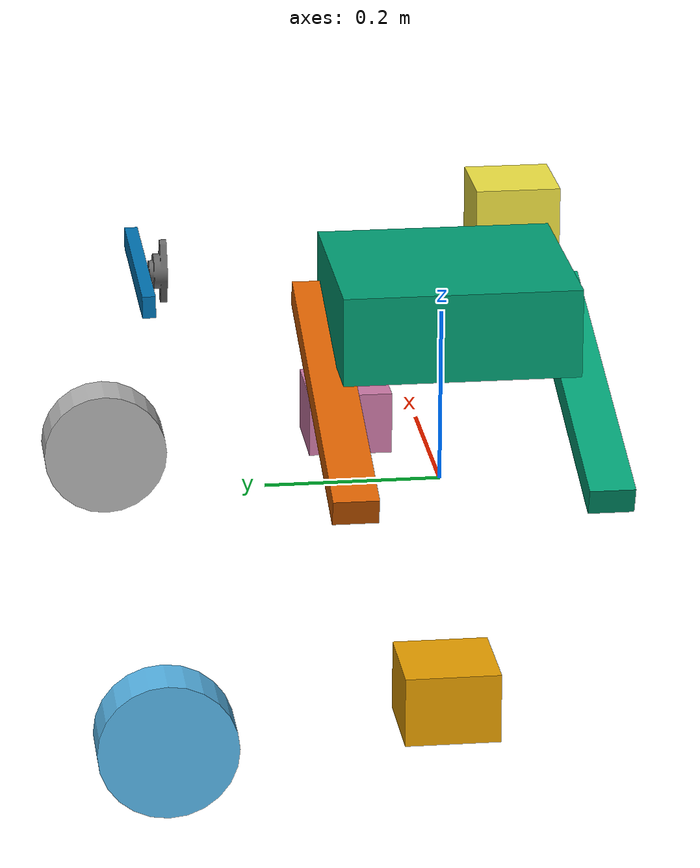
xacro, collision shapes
<?xml version="1.0"?>
<robot xmlns:xacro="http://www.ros.org/wiki/xacro" name="perseus_lite">
  <xacro:arg name="prefix" default="" />
  <xacro:arg name="use_mock_hardware" default="false" />
  <xacro:arg name="serial_port" default="/dev/ttyUSB0" />

  <xacro:property name="real_hardware_plugin"
  value="perseus_lite_hardware/ST3215SystemHardware" />
  <xacro:property name="use_mock_hardware" value="$(arg use_mock_hardware)" />
  <xacro:property name="hardware_plugin"
    value="${'mock_components/GenericSystem' if use_mock_hardware else real_hardware_plugin}" />

  <!-- Import URDF description -->
  <xacro:include filename="$(find perseus_lite_description)/urdf/perseus_lite.urdf.xacro" />
  <!-- Import colours for rviz -->
  <xacro:include filename="$(find perseus_lite_description)/urdf/perseus_lite.materials.xacro" />
  <!-- Import ros2_control description -->
  <xacro:include filename="$(find perseus_lite_description)/ros2_control/perseus_lite.ros2_control.xacro" />

  <!-- Instantiate the description and the ROS2 control information -->
  <xacro:perseus_lite prefix="$(arg prefix)" />
  <xacro:perseus_lite_ros2_control name="PerseusLite" prefix="$(arg prefix)" hardware_plugin="${hardware_plugin}" serial_port="$(arg serial_port)"/>
</robot>

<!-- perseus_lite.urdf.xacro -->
<robot xmlns:xacro="http://ros.org/wiki/xacro">
  <xacro:arg name="hardware_plugin" default="perseus_lite_hardware/ST3215SystemHardware"/>
  <xacro:arg name="hardware_type" default="st3215"/>
  <xacro:arg name="use_mock_hardware" default="false"/>
  <xacro:arg name="serial_port" default="/dev/ttyUSB0"/>

  <xacro:include filename="$(find perseus_lite_description)/ros2_control/perseus_lite.ros2_control.xacro" />

  <xacro:macro name="perseus_lite" params="prefix">
    <xacro:include filename="$(find perseus_lite_description)/urdf/chassis.urdf.xacro"/>
    <xacro:include filename="$(find perseus_lite_description)/urdf/rocker.urdf.xacro"/>

    <xacro:property name="scale" value="0.5"/>

    <link name="${prefix}base_link"/>

    <joint name="base_footprint_joint" type="fixed">
      <parent link="base_link"/>
      <child link="base_footprint"/>
      <origin xyz="0 0 0" rpy="0 0 0"/>
    </joint>

    <link name="base_footprint">
    </link>

    <xacro:chassis />
    <joint name="chassis_joint" type="fixed">
      <origin xyz="${0.21 * scale} 0.0 ${0.35 * scale}" rpy="0.0 0.0 -${pi/2}"/>
      <parent link="${prefix}base_link"/>
      <child link="${prefix}chassis"/>
    </joint>

    <xacro:rocker side="left">
      <origin xyz="${-0.275 * scale} ${-0.075 * scale} ${0.05 * scale}" rpy="0.0 0.0 ${-pi/2}"/>
    </xacro:rocker>
    <xacro:rocker side="right">
      <origin xyz="${0.275 * scale} ${-0.075 * scale} ${0.05 * scale}" rpy="0.0 0.0 ${-pi/2}"/>
    </xacro:rocker>

    <xacro:perseus_lite_ros2_control
      name="PerseusLite"
      prefix="${prefix}"
      hardware_plugin="$(arg hardware_plugin)"
      serial_port="$(arg serial_port)"/>
  </xacro:macro>
</robot>

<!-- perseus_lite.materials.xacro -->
<robot xmlns:xacro="http://www.ros.org/wiki/xacro">

  <material name="black">
    <color rgba="0.0 0.0 0.0 1.0"/>
  </material>

  <material name="dark">
    <color rgba="0.3 0.3 0.3 1.0"/>
  </material>

  <material name="light_black">
    <color rgba="0.4 0.4 0.4 1.0"/>
  </material>

  <material name="blue">
    <color rgba="0.0 0.0 0.8 1.0"/>
  </material>

  <material name="green">
    <color rgba="0.0 0.8 0.0 1.0"/>
  </material>

  <material name="grey">
    <color rgba="0.5 0.5 0.5 1.0"/>
  </material>

  <material name="orange">
    <color rgba="1.0 0.423529411765 0.0392156862745 1.0"/>
  </material>

  <material name="brown">
    <color rgba="0.870588235294 0.811764705882 0.764705882353 1.0"/>
  </material>

  <material name="red">
    <color rgba="0.8 0.0 0.0 1.0"/>
  </material>

  <material name="white">
    <color rgba="1.0 1.0 1.0 1.0"/>
  </material>

</robot>

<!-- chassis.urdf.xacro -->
<robot name="chassis" xmlns:xacro="http://ros.org/wiki/xacro">
  <!-- Contains base rover chassis and balance bar -->
  <xacro:macro name="chassis" params="prefix:=^">
    <!-- CHASSIS -->
    <link name="${prefix}chassis">
       <inertial>
        <!-- Scaled inertial properties for Perseus Lite -->
        <origin xyz="0.0 -0.08550236602 0.07366242988" rpy="0 0 0"/>
        <mass value="1.38449701513"/> <!-- Scaled by 0.5 -->
        <!-- Updated inertia values using square scaling factor (0.5^2 = 0.25) -->
        <inertia ixx="0.005327" iyy="0.002894" izz="0.007011"
                 ixy="0.0" iyz="0.000169" ixz="-0.0"/>
      </inertial>

      <visual>
        <origin xyz="0.0 0.0 0.0" rpy="0 0.0 ${-pi/2}"/>
        <geometry>
          <mesh scale="0.05 0.05 0.05" filename="file://$(find perseus_description)/meshes/chassis.dae"/>
        </geometry>
      </visual>

      <collision>
        <origin xyz="0.0 -0.15 0.05" rpy="0 0.0 ${-pi/2}"/>
        <geometry>
          <box size="0.2375 0.2625 0.1" />
        </geometry>
      </collision>
    </link>

    <!-- Flange Bearing -->
    <link name="${prefix}flange_bearing">
      <inertial>
        <origin xyz="0.0 0.0 0.0" rpy="0 0 0"/>
        <mass value="0.6637443674696325"/>
        <inertia ixx="0.000164" iyy="0.000212" izz="0.000081"
                 ixy="0.0" iyz="0.0" ixz="-0.0"/>
      </inertial>

      <visual>
        <origin xyz="0.0 0.0 0.0" rpy="0 0 0"/>
        <geometry>
          <mesh scale="0.05 0.05 0.05" filename="file://$(find perseus_description)/meshes/flange_bearing.dae"/>
        </geometry>
      </visual>

      <collision>
        <origin xyz="0.0 0.0 0.0" rpy="0 0 0"/>
        <geometry>
          <mesh scale="0.05 0.05 0.05" filename="file://$(find perseus_description)/meshes/flange_bearing.dae"/>
        </geometry>
      </collision>
    </link>

    <joint name="${prefix}flange_bearing_joint" type="fixed">
      <origin xyz="-0.3 -0.0 0.05" rpy="0 ${-pi/2} 0.0"/>
      <parent link="${prefix}chassis"/>
      <child link="${prefix}flange_bearing"/>
    </joint>

    <!-- Balance/differential bar -->
    <link name="${prefix}differential_bar">
      <inertial>
        <origin xyz="-0.0006050564992 -0.02287436340 0.0" rpy="0.0 0.0 0.0"/>
        <mass value="0.4586324759064"/>
        <inertia ixx="0.000045" iyy="0.002292" izz="0.002267"
                 ixy="0.0000004" iyz="-0.0" ixz="0.0"/>
      </inertial>

      <visual>
        <origin xyz="0.0 0.0 0.0" rpy="0.0 0.0 0.0"/>
        <geometry>
          <mesh scale="0.05 0.05 0.05" filename="file://$(find perseus_description)/meshes/differential_bar.dae"/>
        </geometry>
      </visual>

      <collision>
        <origin xyz="0.0 0.0 -0.005" rpy="0.0 0.0 0.0"/>
        <geometry>
          <box size="0.25 0.025 0.015" />
        </geometry>
      </collision>
    </link>

    <joint name="${prefix}differential_bar_joint" type="fixed">
      <origin xyz="0.0 0.0 0.025" rpy="${pi} 0.0 ${-pi/2}"/>
      <axis xyz="0.0 0.0 1.0"/>
      <parent link="${prefix}flange_bearing"/>
      <child link="${prefix}differential_bar"/>
    </joint>
  </xacro:macro>
</robot>

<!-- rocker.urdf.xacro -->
<robot name="rocker" xmlns:xacro="http://www.ros.org/wiki/xacro">

  <xacro:include filename="$(find perseus_lite_description)/urdf/motor_wheel.urdf.xacro"/>

  <xacro:macro name="rocker" params="prefix:=^ side *origin">
    <!-- ROCKER ARM -->
    <link name="${prefix}${side}_rocker">
      <inertial>
        <origin xyz="0.011819187400851083 -0.08337339654014758 -0.06739096070989994" rpy="0.0 0.0 0.0"/>
        <!-- RIGHT -->
        <xacro:if value="${side == 'right'}">
          <inertia ixx="0.078224" iyy="0.009964" izz="0.076528" ixy="0.003701" iyz="-0.006846" ixz="0.00298"/>
        </xacro:if>
        <!-- LEFT -->
        <xacro:if value="${side == 'left'}">
          <inertia ixx="0.078224" iyy="0.009964" izz="0.076528" ixy="0.003701" iyz="-0.006846" ixz="0.00298"/>
        </xacro:if>
        <mass value="1.2546142039512485"/>
      </inertial>

      <visual>
        <origin xyz="0.0 0.0 0.0" rpy="0.0 0.0 0.0"/>
        <geometry>
          <mesh scale="0.1 0.1 0.1" filename="file://$(find perseus_lite_description)/meshes/rocker_${side}.dae"/>
        </geometry>
      </visual>
      <collision>
        <origin xyz="0.2 0.0 -0.05" rpy="0.0 0.3 0.0"/>
        <geometry>
          <box size="0.4 0.05 0.03" />
        </geometry>
      </collision>
    </link>

    <joint name="${prefix}${side}_rocker_joint" type="fixed">
      <xacro:insert_block name="origin"/>
      <parent link="${prefix}chassis"/>
      <child link="${prefix}${side}_rocker"/>
    </joint>

    <!-- FRONT MOTOR -->
    <xacro:motor_wheel end="front">
      <xacro:if value="${side == 'left'}">
        <origin xyz="-0.3 -0.225 -0.25" rpy="0.0 0.0 ${-pi/2}"/>
      </xacro:if>
      <xacro:if value="${side == 'right'}">
        <origin xyz="-0.3 0.225 -0.25" rpy="0.0 0.0 ${pi/2}"/>
      </xacro:if>
    </xacro:motor_wheel>

    <!-- REAR MOTOR -->
    <xacro:motor_wheel end="rear">
      <xacro:if value="${side == 'left'}">
        <origin xyz="0.55 -0.225 -0.25" rpy="0.0 0.0 ${-pi/2}"/>
      </xacro:if>
      <xacro:if value="${side == 'right'}">
        <origin xyz="0.55 0.225 -0.25" rpy="0.0 0.0 ${pi/2}"/>
      </xacro:if>
    </xacro:motor_wheel>
  </xacro:macro>
</robot>

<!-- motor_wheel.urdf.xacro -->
<robot name="motor_wheel" xmlns:xacro="http://www.ros.org/wiki/xacro">
  <xacro:include filename="$(find perseus_lite_description)/urdf/wheel.urdf.xacro"/>

  <xacro:macro name="motor_wheel" params="prefix:=^ side:=^ end *origin">
    <link name="${prefix}${end}_${side}_motor">
      <inertial>
        <!-- moving origin has no perceivable impact-->
        <origin xyz="0.0 0.0 0.0" rpy="0.0 0.0 0.0"/>
        <mass value="5.236579"/>
        <inertia ixx="0.01" iyy="0.01" izz="0.01" ixy="0.0" iyz="0.0" ixz="0.0"/> <!-- TEMP -->
      </inertial>

      <visual>
        <origin xyz="-0.265 0.0 0.0" rpy="0.0 0.0 ${pi}"/>
        <geometry>
          <mesh scale="0.1 0.1 0.1" filename="file://$(find perseus_lite_description)/meshes/gearbox.dae"/>
        </geometry>
      </visual>

      <collision>
        <origin xyz="-0.3 0.0 0.0" rpy="0.0 0.0 0.0"/>
        <geometry>
          <box size="0.1 0.1 0.075" />
          <!--mesh scale="0.1 0.1 0.1" filename="file://$(find perseus_lite_description)/meshes/gearbox.dae"/-->
        </geometry>
      </collision>
    </link>

    <!-- JOINT -->
    <joint name="${prefix}${end}_${side}_motor_joint" type="fixed">
      <parent link="${prefix}${side}_rocker"/>
      <child link="${prefix}${end}_${side}_motor"/>
      <xacro:insert_block name="origin"/>
    </joint>

    <!-- TRANSMISSION -->

    <xacro:wheel />
  </xacro:macro>
</robot>

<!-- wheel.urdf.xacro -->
<robot name="wheel" xmlns:xacro="http://ros.org/wiki/xacro">
  <xacro:property name="wheel_radius" value="0.0725"/>
  <xacro:property name="wheel_length" value="0.0575"/>
  <xacro:property name="wheel_mass" value="0.005"/>
  <xacro:property name="wheels_y_offset" value="0.09"/>

  <xacro:macro name="wheel" params="prefix:=^ side:=^ end:=^">
    <link name="${prefix}${end}_${side}_wheel">
      <inertial>
        <origin xyz="0.0 0.0 0.0" rpy="0.0 0.0 0.0"/>
        <mass value="${wheel_mass}"/>
        <inertia ixx="0.006434" iyy="0.003644" izz="0.003644"
                 ixy="0.0" iyz="0.0" ixz="0.0"/>
      </inertial>

      <visual>
        <!-- Rotate mesh so tread pattern faces outward -->
        <xacro:if value="${side == 'left'}">
          <origin xyz="0.0 0.0 0.0" rpy="0.0 0.0 ${pi}"/>
        </xacro:if>
        <xacro:if value="${side == 'right'}">
          <origin xyz="0.0 0.0 0.0" rpy="0.0 0.0 0.0"/>
        </xacro:if>
        <geometry>
          <mesh scale="0.1 0.1 0.1" filename="file://$(find perseus_lite_description)/meshes/wheel.dae"/>
        </geometry>
      </visual>

      <collision>
        <!-- Rotate cylinder 90° around X to align with Y axis (wheel axle) -->
        <origin xyz="0.0 0.0 0.0" rpy="${pi/2} 0.0 0.0"/>
        <geometry>
          <cylinder radius="${wheel_radius}" length="${wheel_length}"/>
        </geometry>
      </collision>
    </link>

    <!-- WHEEL JOINT -->
    <joint name="${prefix}${end}_${side}_wheel_joint" type="continuous">
      <parent link="${prefix}${end}_${side}_motor"/>
      <child link="${prefix}${end}_${side}_wheel"/>
      <xacro:if value="${side == 'left'}">
        <origin xyz="0.0 ${wheels_y_offset} 0.0" rpy="0.0 0.0 0.0"/>
        <axis xyz="0 -1 0"/>
      </xacro:if>
      <xacro:if value="${side == 'right'}">
        <origin xyz="0.0 ${-wheels_y_offset} 0.0" rpy="0.0 0.0 0.0"/>
        <axis xyz="0 1 0"/>
      </xacro:if>
      <dynamics damping="0.2" friction="0.3"/>
    </joint>

  <transmission name="${prefix}${end}_${side}_wheel_trans">
    <type>transmission_interface/SimpleTransmission</type>
      <joint name="${prefix}${end}_${side}_wheel_joint">
        <command_interface name="velocity"/>
        <state_interface name="position"/>
        <state_interface name="velocity"/>
        <state_interface name="temperature"/>
      </joint>
      <actuator name="${prefix}${end}_${side}_wheel_motor">
        <mechanical_reduction>1.0</mechanical_reduction>
      </actuator>
    </transmission>

  </xacro:macro>
</robot>
